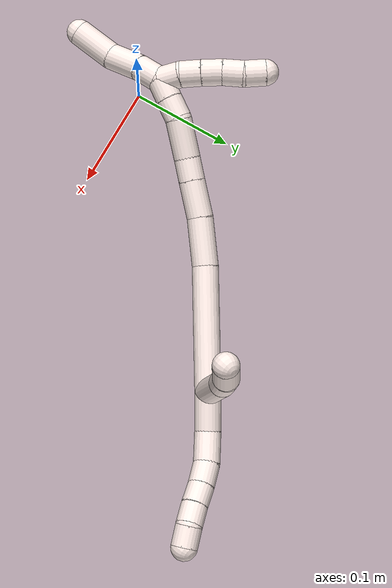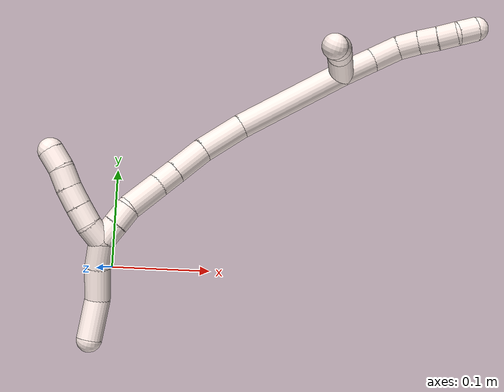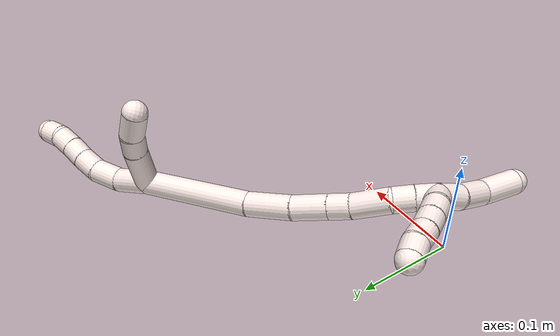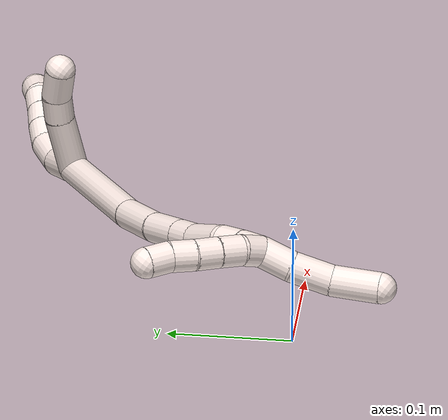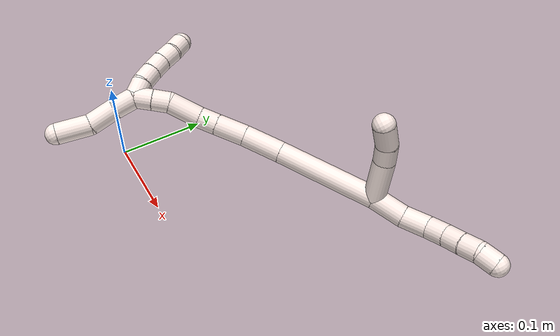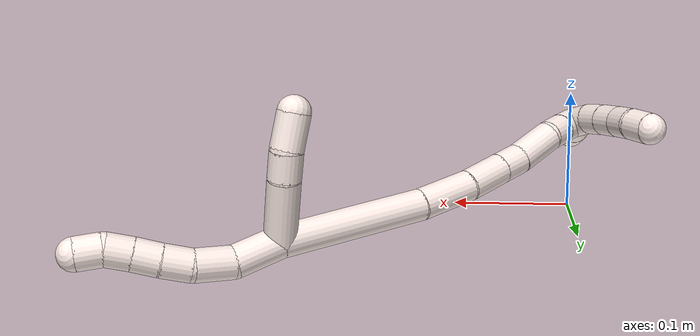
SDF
<sdf version="1.7">
 <world name="default">
  <model name="11">
   <static>0</static>
   <link name="11">
    <collision name="collision-cylinder-e_1_2_8">
     <pose>0.013127 0.009256 0.009405 -0.777404 0.782778 -0.334852</pose>
     <geometry><cylinder><radius>0.0125</radius><length>0.037226</length></cylinder></geometry>
     <surface>
      <friction><ode><mu>1.16</mu><mu2>1.16</mu2><slip1>0</slip1><slip2>0</slip2></ode></friction>
      <contact><ode><kp>1e+06</kp><kd>1</kd><max_vel>0</max_vel><min_depth>0.001</min_depth></ode></contact>
     </surface>
    </collision>
    <visual name="visual-cylinder-e_1_2_8">
     <pose>0.013127 0.009256 0.009405 -0.777404 0.782778 -0.334852</pose>
     <geometry><cylinder><radius>0.0125</radius><length>0.037226</length></cylinder></geometry>
     <material><ambient>1 0.933333 0.909804 1</ambient></material>
    </visual>
    <collision name="collision-cylinder-e_2_8_9">
     <pose>0.037195 0.021678 0.02876 -0.30807 0.808796 -0.132708</pose>
     <geometry><cylinder><radius>0.0125</radius><length>0.030249</length></cylinder></geometry>
     <surface>
      <friction><ode><mu>1.16</mu><mu2>1.16</mu2><slip1>0</slip1><slip2>0</slip2></ode></friction>
      <contact><ode><kp>1e+06</kp><kd>1</kd><max_vel>0</max_vel><min_depth>0.001</min_depth></ode></contact>
     </surface>
    </collision>
    <visual name="visual-cylinder-e_2_8_9">
     <pose>0.037195 0.021678 0.02876 -0.30807 0.808796 -0.132708</pose>
     <geometry><cylinder><radius>0.0125</radius><length>0.030249</length></cylinder></geometry>
     <material><ambient>1 0.933333 0.909804 1</ambient></material>
    </visual>
    <collision name="collision-cylinder-e_3_9_10">
     <pose>0.057064 0.024229 0.045367 0.092048 0.927982 0.046088</pose>
     <geometry><cylinder><radius>0.0125</radius><length>0.022306</length></cylinder></geometry>
     <surface>
      <friction><ode><mu>1.16</mu><mu2>1.16</mu2><slip1>0</slip1><slip2>0</slip2></ode></friction>
      <contact><ode><kp>1e+06</kp><kd>1</kd><max_vel>0</max_vel><min_depth>0.001</min_depth></ode></contact>
     </surface>
    </collision>
    <visual name="visual-cylinder-e_3_9_10">
     <pose>0.057064 0.024229 0.045367 0.092048 0.927982 0.046088</pose>
     <geometry><cylinder><radius>0.0125</radius><length>0.022306</length></cylinder></geometry>
     <material><ambient>1 0.933333 0.909804 1</ambient></material>
    </visual>
    <collision name="collision-cylinder-e_4_10_11">
     <pose>0.074271 0.022409 0.057577 0.213888 0.969392 0.112943</pose>
     <geometry><cylinder><radius>0.0125</radius><length>0.020084</length></cylinder></geometry>
     <surface>
      <friction><ode><mu>1.16</mu><mu2>1.16</mu2><slip1>0</slip1><slip2>0</slip2></ode></friction>
      <contact><ode><kp>1e+06</kp><kd>1</kd><max_vel>0</max_vel><min_depth>0.001</min_depth></ode></contact>
     </surface>
    </collision>
    <visual name="visual-cylinder-e_4_10_11">
     <pose>0.074271 0.022409 0.057577 0.213888 0.969392 0.112943</pose>
     <geometry><cylinder><radius>0.0125</radius><length>0.020084</length></cylinder></geometry>
     <material><ambient>1 0.933333 0.909804 1</ambient></material>
    </visual>
    <collision name="collision-cylinder-e_5_11_12">
     <pose>0.090648 0.02059 0.068984 0.104227 0.942147 0.05312</pose>
     <geometry><cylinder><radius>0.0125</radius><length>0.020021</length></cylinder></geometry>
     <surface>
      <friction><ode><mu>1.16</mu><mu2>1.16</mu2><slip1>0</slip1><slip2>0</slip2></ode></friction>
      <contact><ode><kp>1e+06</kp><kd>1</kd><max_vel>0</max_vel><min_depth>0.001</min_depth></ode></contact>
     </surface>
    </collision>
    <visual name="visual-cylinder-e_5_11_12">
     <pose>0.090648 0.02059 0.068984 0.104227 0.942147 0.05312</pose>
     <geometry><cylinder><radius>0.0125</radius><length>0.020021</length></cylinder></geometry>
     <material><ambient>1 0.933333 0.909804 1</ambient></material>
    </visual>
    <collision name="collision-cylinder-e_6_12_6">
     <pose>0.10725 0.022573 0.079537 -0.504638 1.00784 -0.282427</pose>
     <geometry><cylinder><radius>0.0125</radius><length>0.020114</length></cylinder></geometry>
     <surface>
      <friction><ode><mu>1.16</mu><mu2>1.16</mu2><slip1>0</slip1><slip2>0</slip2></ode></friction>
      <contact><ode><kp>1e+06</kp><kd>1</kd><max_vel>0</max_vel><min_depth>0.001</min_depth></ode></contact>
     </surface>
    </collision>
    <visual name="visual-cylinder-e_6_12_6">
     <pose>0.10725 0.022573 0.079537 -0.504638 1.00784 -0.282427</pose>
     <geometry><cylinder><radius>0.0125</radius><length>0.020114</length></cylinder></geometry>
     <material><ambient>1 0.933333 0.909804 1</ambient></material>
    </visual>
    <collision name="collision-cylinder-e_1_2_13">
     <pose>-0.006896 -0.019104 0.015215 0.898237 -0.275185 -0.133276</pose>
     <geometry><cylinder><radius>0.0125</radius><length>0.050754</length></cylinder></geometry>
     <surface>
      <friction><ode><mu>1.16</mu><mu2>1.16</mu2><slip1>0</slip1><slip2>0</slip2></ode></friction>
      <contact><ode><kp>1e+06</kp><kd>1</kd><max_vel>0</max_vel><min_depth>0.001</min_depth></ode></contact>
     </surface>
    </collision>
    <visual name="visual-cylinder-e_1_2_13">
     <pose>-0.006896 -0.019104 0.015215 0.898237 -0.275185 -0.133276</pose>
     <geometry><cylinder><radius>0.0125</radius><length>0.050754</length></cylinder></geometry>
     <material><ambient>1 0.933333 0.909804 1</ambient></material>
    </visual>
    <collision name="collision-cylinder-e_2_13_14">
     <pose>-0.016402 -0.047135 0.035901 1.02098 -0.244401 -0.137335</pose>
     <geometry><cylinder><radius>0.0125</radius><length>0.021583</length></cylinder></geometry>
     <surface>
      <friction><ode><mu>1.16</mu><mu2>1.16</mu2><slip1>0</slip1><slip2>0</slip2></ode></friction>
      <contact><ode><kp>1e+06</kp><kd>1</kd><max_vel>0</max_vel><min_depth>0.001</min_depth></ode></contact>
     </surface>
    </collision>
    <visual name="visual-cylinder-e_2_13_14">
     <pose>-0.016402 -0.047135 0.035901 1.02098 -0.244401 -0.137335</pose>
     <geometry><cylinder><radius>0.0125</radius><length>0.021583</length></cylinder></geometry>
     <material><ambient>1 0.933333 0.909804 1</ambient></material>
    </visual>
    <collision name="collision-cylinder-e_3_14_5">
     <pose>-0.022548 -0.068873 0.045209 1.27979 -0.258358 -0.192795</pose>
     <geometry><cylinder><radius>0.0125</radius><length>0.027663</length></cylinder></geometry>
     <surface>
      <friction><ode><mu>1.16</mu><mu2>1.16</mu2><slip1>0</slip1><slip2>0</slip2></ode></friction>
      <contact><ode><kp>1e+06</kp><kd>1</kd><max_vel>0</max_vel><min_depth>0.001</min_depth></ode></contact>
     </surface>
    </collision>
    <visual name="visual-cylinder-e_3_14_5">
     <pose>-0.022548 -0.068873 0.045209 1.27979 -0.258358 -0.192795</pose>
     <geometry><cylinder><radius>0.0125</radius><length>0.027663</length></cylinder></geometry>
     <material><ambient>1 0.933333 0.909804 1</ambient></material>
    </visual>
    <collision name="collision-cylinder-e_1_2_15">
     <pose>-0.040981 -0.021945 -0.036236 2.59707 -0.768816 -1.9334</pose>
     <geometry><cylinder><radius>0.0125</radius><length>0.117883</length></cylinder></geometry>
     <surface>
      <friction><ode><mu>1.16</mu><mu2>1.16</mu2><slip1>0</slip1><slip2>0</slip2></ode></friction>
      <contact><ode><kp>1e+06</kp><kd>1</kd><max_vel>0</max_vel><min_depth>0.001</min_depth></ode></contact>
     </surface>
    </collision>
    <visual name="visual-cylinder-e_1_2_15">
     <pose>-0.040981 -0.021945 -0.036236 2.59707 -0.768816 -1.9334</pose>
     <geometry><cylinder><radius>0.0125</radius><length>0.117883</length></cylinder></geometry>
     <material><ambient>1 0.933333 0.909804 1</ambient></material>
    </visual>
    <collision name="collision-cylinder-e_2_15_16">
     <pose>-0.096509 -0.054749 -0.086718 2.49025 -0.682074 -1.62048</pose>
     <geometry><cylinder><radius>0.0125</radius><length>0.046151</length></cylinder></geometry>
     <surface>
      <friction><ode><mu>1.16</mu><mu2>1.16</mu2><slip1>0</slip1><slip2>0</slip2></ode></friction>
      <contact><ode><kp>1e+06</kp><kd>1</kd><max_vel>0</max_vel><min_depth>0.001</min_depth></ode></contact>
     </surface>
    </collision>
    <visual name="visual-cylinder-e_2_15_16">
     <pose>-0.096509 -0.054749 -0.086718 2.49025 -0.682074 -1.62048</pose>
     <geometry><cylinder><radius>0.0125</radius><length>0.046151</length></cylinder></geometry>
     <material><ambient>1 0.933333 0.909804 1</ambient></material>
    </visual>
    <collision name="collision-cylinder-e_3_16_17">
     <pose>-0.120567 -0.075333 -0.112295 2.43235 -0.567169 -1.33365</pose>
     <geometry><cylinder><radius>0.0125</radius><length>0.035408</length></cylinder></geometry>
     <surface>
      <friction><ode><mu>1.16</mu><mu2>1.16</mu2><slip1>0</slip1><slip2>0</slip2></ode></friction>
      <contact><ode><kp>1e+06</kp><kd>1</kd><max_vel>0</max_vel><min_depth>0.001</min_depth></ode></contact>
     </surface>
    </collision>
    <visual name="visual-cylinder-e_3_16_17">
     <pose>-0.120567 -0.075333 -0.112295 2.43235 -0.567169 -1.33365</pose>
     <geometry><cylinder><radius>0.0125</radius><length>0.035408</length></cylinder></geometry>
     <material><ambient>1 0.933333 0.909804 1</ambient></material>
    </visual>
    <collision name="collision-cylinder-e_4_17_18">
     <pose>-0.136039 -0.091027 -0.130585 2.43261 -0.576452 -1.35073</pose>
     <geometry><cylinder><radius>0.0125</radius><length>0.02187</length></cylinder></geometry>
     <surface>
      <friction><ode><mu>1.16</mu><mu2>1.16</mu2><slip1>0</slip1><slip2>0</slip2></ode></friction>
      <contact><ode><kp>1e+06</kp><kd>1</kd><max_vel>0</max_vel><min_depth>0.001</min_depth></ode></contact>
     </surface>
    </collision>
    <visual name="visual-cylinder-e_4_17_18">
     <pose>-0.136039 -0.091027 -0.130585 2.43261 -0.576452 -1.35073</pose>
     <geometry><cylinder><radius>0.0125</radius><length>0.02187</length></cylinder></geometry>
     <material><ambient>1 0.933333 0.909804 1</ambient></material>
    </visual>
    <collision name="collision-cylinder-e_5_18_19">
     <pose>-0.151884 -0.109387 -0.147917 2.26779 -0.548959 -1.0852</pose>
     <geometry><cylinder><radius>0.0125</radius><length>0.037888</length></cylinder></geometry>
     <surface>
      <friction><ode><mu>1.16</mu><mu2>1.16</mu2><slip1>0</slip1><slip2>0</slip2></ode></friction>
      <contact><ode><kp>1e+06</kp><kd>1</kd><max_vel>0</max_vel><min_depth>0.001</min_depth></ode></contact>
     </surface>
    </collision>
    <visual name="visual-cylinder-e_5_18_19">
     <pose>-0.151884 -0.109387 -0.147917 2.26779 -0.548959 -1.0852</pose>
     <geometry><cylinder><radius>0.0125</radius><length>0.037888</length></cylinder></geometry>
     <material><ambient>1 0.933333 0.909804 1</ambient></material>
    </visual>
    <collision name="collision-cylinder-e_6_19_20">
     <pose>-0.16527 -0.127249 -0.166166 2.53444 -0.350097 -1.02792</pose>
     <geometry><cylinder><radius>0.0125</radius><length>0.020414</length></cylinder></geometry>
     <surface>
      <friction><ode><mu>1.16</mu><mu2>1.16</mu2><slip1>0</slip1><slip2>0</slip2></ode></friction>
      <contact><ode><kp>1e+06</kp><kd>1</kd><max_vel>0</max_vel><min_depth>0.001</min_depth></ode></contact>
     </surface>
    </collision>
    <visual name="visual-cylinder-e_6_19_20">
     <pose>-0.16527 -0.127249 -0.166166 2.53444 -0.350097 -1.02792</pose>
     <geometry><cylinder><radius>0.0125</radius><length>0.020414</length></cylinder></geometry>
     <material><ambient>1 0.933333 0.909804 1</ambient></material>
    </visual>
    <collision name="collision-cylinder-e_7_20_1">
     <pose>-0.172418 -0.137823 -0.182074 2.57566 -0.365872 -1.13331</pose>
     <geometry><cylinder><radius>0.0125</radius><length>0.020385</length></cylinder></geometry>
     <surface>
      <friction><ode><mu>1.16</mu><mu2>1.16</mu2><slip1>0</slip1><slip2>0</slip2></ode></friction>
      <contact><ode><kp>1e+06</kp><kd>1</kd><max_vel>0</max_vel><min_depth>0.001</min_depth></ode></contact>
     </surface>
    </collision>
    <visual name="visual-cylinder-e_7_20_1">
     <pose>-0.172418 -0.137823 -0.182074 2.57566 -0.365872 -1.13331</pose>
     <geometry><cylinder><radius>0.0125</radius><length>0.020385</length></cylinder></geometry>
     <material><ambient>1 0.933333 0.909804 1</ambient></material>
    </visual>
    <collision name="collision-cylinder-e_1_1_21">
     <pose>-0.184144 -0.142384 -0.184241 -0.09231 -0.940716 0.046957</pose>
     <geometry><cylinder><radius>0.0125</radius><length>0.02</length></cylinder></geometry>
     <surface>
      <friction><ode><mu>1.16</mu><mu2>1.16</mu2><slip1>0</slip1><slip2>0</slip2></ode></friction>
      <contact><ode><kp>1e+06</kp><kd>1</kd><max_vel>0</max_vel><min_depth>0.001</min_depth></ode></contact>
     </surface>
    </collision>
    <visual name="visual-cylinder-e_1_1_21">
     <pose>-0.184144 -0.142384 -0.184241 -0.09231 -0.940716 0.046957</pose>
     <geometry><cylinder><radius>0.0125</radius><length>0.02</length></cylinder></geometry>
     <material><ambient>1 0.933333 0.909804 1</ambient></material>
    </visual>
    <collision name="collision-cylinder-e_2_21_22">
     <pose>-0.199554 -0.138934 -0.172225 -0.441528 -0.822812 0.19521</pose>
     <geometry><cylinder><radius>0.0125</radius><length>0.02</length></cylinder></geometry>
     <surface>
      <friction><ode><mu>1.16</mu><mu2>1.16</mu2><slip1>0</slip1><slip2>0</slip2></ode></friction>
      <contact><ode><kp>1e+06</kp><kd>1</kd><max_vel>0</max_vel><min_depth>0.001</min_depth></ode></contact>
     </surface>
    </collision>
    <visual name="visual-cylinder-e_2_21_22">
     <pose>-0.199554 -0.138934 -0.172225 -0.441528 -0.822812 0.19521</pose>
     <geometry><cylinder><radius>0.0125</radius><length>0.02</length></cylinder></geometry>
     <material><ambient>1 0.933333 0.909804 1</ambient></material>
    </visual>
    <collision name="collision-cylinder-e_3_22_23">
     <pose>-0.213987 -0.132727 -0.159857 -0.48791 -0.789769 0.206742</pose>
     <geometry><cylinder><radius>0.0125</radius><length>0.02</length></cylinder></geometry>
     <surface>
      <friction><ode><mu>1.16</mu><mu2>1.16</mu2><slip1>0</slip1><slip2>0</slip2></ode></friction>
      <contact><ode><kp>1e+06</kp><kd>1</kd><max_vel>0</max_vel><min_depth>0.001</min_depth></ode></contact>
     </surface>
    </collision>
    <visual name="visual-cylinder-e_3_22_23">
     <pose>-0.213987 -0.132727 -0.159857 -0.48791 -0.789769 0.206742</pose>
     <geometry><cylinder><radius>0.0125</radius><length>0.02</length></cylinder></geometry>
     <material><ambient>1 0.933333 0.909804 1</ambient></material>
    </visual>
    <collision name="collision-cylinder-e_4_23_24">
     <pose>-0.227402 -0.12587 -0.146747 -0.476525 -0.683234 0.172285</pose>
     <geometry><cylinder><radius>0.0125</radius><length>0.02</length></cylinder></geometry>
     <surface>
      <friction><ode><mu>1.16</mu><mu2>1.16</mu2><slip1>0</slip1><slip2>0</slip2></ode></friction>
      <contact><ode><kp>1e+06</kp><kd>1</kd><max_vel>0</max_vel><min_depth>0.001</min_depth></ode></contact>
     </surface>
    </collision>
    <visual name="visual-cylinder-e_4_23_24">
     <pose>-0.227402 -0.12587 -0.146747 -0.476525 -0.683234 0.172285</pose>
     <geometry><cylinder><radius>0.0125</radius><length>0.02</length></cylinder></geometry>
     <material><ambient>1 0.933333 0.909804 1</ambient></material>
    </visual>
    <collision name="collision-cylinder-e_5_24_4">
     <pose>-0.241216 -0.118254 -0.134634 -0.660713 -0.848262 0.307245</pose>
     <geometry><cylinder><radius>0.0125</radius><length>0.02</length></cylinder></geometry>
     <surface>
      <friction><ode><mu>1.16</mu><mu2>1.16</mu2><slip1>0</slip1><slip2>0</slip2></ode></friction>
      <contact><ode><kp>1e+06</kp><kd>1</kd><max_vel>0</max_vel><min_depth>0.001</min_depth></ode></contact>
     </surface>
    </collision>
    <visual name="visual-cylinder-e_5_24_4">
     <pose>-0.241216 -0.118254 -0.134634 -0.660713 -0.848262 0.307245</pose>
     <geometry><cylinder><radius>0.0125</radius><length>0.02</length></cylinder></geometry>
     <material><ambient>1 0.933333 0.909804 1</ambient></material>
    </visual>
    <collision name="collision-cylinder-e_1_1_25">
     <pose>-0.17427 -0.144734 -0.203362 3.00605 0.133357 1.55449</pose>
     <geometry><cylinder><radius>0.0125</radius><length>0.026993</length></cylinder></geometry>
     <surface>
      <friction><ode><mu>1.16</mu><mu2>1.16</mu2><slip1>0</slip1><slip2>0</slip2></ode></friction>
      <contact><ode><kp>1e+06</kp><kd>1</kd><max_vel>0</max_vel><min_depth>0.001</min_depth></ode></contact>
     </surface>
    </collision>
    <visual name="visual-cylinder-e_1_1_25">
     <pose>-0.17427 -0.144734 -0.203362 3.00605 0.133357 1.55449</pose>
     <geometry><cylinder><radius>0.0125</radius><length>0.026993</length></cylinder></geometry>
     <material><ambient>1 0.933333 0.909804 1</ambient></material>
    </visual>
    <collision name="collision-cylinder-e_2_25_26">
     <pose>-0.167674 -0.149703 -0.232251 2.94211 0.292356 1.94762</pose>
     <geometry><cylinder><radius>0.0125</radius><length>0.033315</length></cylinder></geometry>
     <surface>
      <friction><ode><mu>1.16</mu><mu2>1.16</mu2><slip1>0</slip1><slip2>0</slip2></ode></friction>
      <contact><ode><kp>1e+06</kp><kd>1</kd><max_vel>0</max_vel><min_depth>0.001</min_depth></ode></contact>
     </surface>
    </collision>
    <visual name="visual-cylinder-e_2_25_26">
     <pose>-0.167674 -0.149703 -0.232251 2.94211 0.292356 1.94762</pose>
     <geometry><cylinder><radius>0.0125</radius><length>0.033315</length></cylinder></geometry>
     <material><ambient>1 0.933333 0.909804 1</ambient></material>
    </visual>
    <collision name="collision-cylinder-e_3_26_3">
     <pose>-0.160617 -0.162124 -0.265292 2.65268 0.113964 0.449636</pose>
     <geometry><cylinder><radius>0.0125</radius><length>0.039692</length></cylinder></geometry>
     <surface>
      <friction><ode><mu>1.16</mu><mu2>1.16</mu2><slip1>0</slip1><slip2>0</slip2></ode></friction>
      <contact><ode><kp>1e+06</kp><kd>1</kd><max_vel>0</max_vel><min_depth>0.001</min_depth></ode></contact>
     </surface>
    </collision>
    <visual name="visual-cylinder-e_3_26_3">
     <pose>-0.160617 -0.162124 -0.265292 2.65268 0.113964 0.449636</pose>
     <geometry><cylinder><radius>0.0125</radius><length>0.039692</length></cylinder></geometry>
     <material><ambient>1 0.933333 0.909804 1</ambient></material>
    </visual>
    <collision name="collision-sphere-3">
     <pose>-0.15836 -0.171384 -0.282699 0 -0 0</pose>
     <geometry><sphere><radius>0.0125</radius></sphere></geometry>
     <surface>
      <friction><ode><mu>1.16</mu><mu2>1.16</mu2><slip1>0</slip1><slip2>0</slip2></ode></friction>
      <contact><ode><kp>1e+06</kp><kd>1</kd><max_vel>0</max_vel><min_depth>0.001</min_depth></ode></contact>
     </surface>
    </collision>
    <visual name="visual-sphere-3">
     <pose>-0.15836 -0.171384 -0.282699 0 -0 0</pose>
     <geometry><sphere><radius>0.0125</radius></sphere></geometry>
     <material><ambient>1 0.933333 0.909804 1</ambient></material>
    </visual>
    <collision name="collision-sphere-26">
     <pose>-0.162873 -0.152864 -0.247885 0 -0 0</pose>
     <geometry><sphere><radius>0.0125</radius></sphere></geometry>
     <surface>
      <friction><ode><mu>1.16</mu><mu2>1.16</mu2><slip1>0</slip1><slip2>0</slip2></ode></friction>
      <contact><ode><kp>1e+06</kp><kd>1</kd><max_vel>0</max_vel><min_depth>0.001</min_depth></ode></contact>
     </surface>
    </collision>
    <visual name="visual-sphere-26">
     <pose>-0.162873 -0.152864 -0.247885 0 -0 0</pose>
     <geometry><sphere><radius>0.0125</radius></sphere></geometry>
     <material><ambient>1 0.933333 0.909804 1</ambient></material>
    </visual>
    <collision name="collision-sphere-25">
     <pose>-0.172475 -0.146542 -0.216616 0 -0 0</pose>
     <geometry><sphere><radius>0.0125</radius></sphere></geometry>
     <surface>
      <friction><ode><mu>1.16</mu><mu2>1.16</mu2><slip1>0</slip1><slip2>0</slip2></ode></friction>
      <contact><ode><kp>1e+06</kp><kd>1</kd><max_vel>0</max_vel><min_depth>0.001</min_depth></ode></contact>
     </surface>
    </collision>
    <visual name="visual-sphere-25">
     <pose>-0.172475 -0.146542 -0.216616 0 -0 0</pose>
     <geometry><sphere><radius>0.0125</radius></sphere></geometry>
     <material><ambient>1 0.933333 0.909804 1</ambient></material>
    </visual>
    <collision name="collision-sphere-4">
     <pose>-0.248718 -0.114196 -0.129413 0 -0 0</pose>
     <geometry><sphere><radius>0.0125</radius></sphere></geometry>
     <surface>
      <friction><ode><mu>1.16</mu><mu2>1.16</mu2><slip1>0</slip1><slip2>0</slip2></ode></friction>
      <contact><ode><kp>1e+06</kp><kd>1</kd><max_vel>0</max_vel><min_depth>0.001</min_depth></ode></contact>
     </surface>
    </collision>
    <visual name="visual-sphere-4">
     <pose>-0.248718 -0.114196 -0.129413 0 -0 0</pose>
     <geometry><sphere><radius>0.0125</radius></sphere></geometry>
     <material><ambient>1 0.933333 0.909804 1</ambient></material>
    </visual>
    <collision name="collision-sphere-24">
     <pose>-0.233715 -0.122312 -0.139856 0 -0 0</pose>
     <geometry><sphere><radius>0.0125</radius></sphere></geometry>
     <surface>
      <friction><ode><mu>1.16</mu><mu2>1.16</mu2><slip1>0</slip1><slip2>0</slip2></ode></friction>
      <contact><ode><kp>1e+06</kp><kd>1</kd><max_vel>0</max_vel><min_depth>0.001</min_depth></ode></contact>
     </surface>
    </collision>
    <visual name="visual-sphere-24">
     <pose>-0.233715 -0.122312 -0.139856 0 -0 0</pose>
     <geometry><sphere><radius>0.0125</radius></sphere></geometry>
     <material><ambient>1 0.933333 0.909804 1</ambient></material>
    </visual>
    <collision name="collision-sphere-23">
     <pose>-0.221089 -0.129427 -0.153638 0 -0 0</pose>
     <geometry><sphere><radius>0.0125</radius></sphere></geometry>
     <surface>
      <friction><ode><mu>1.16</mu><mu2>1.16</mu2><slip1>0</slip1><slip2>0</slip2></ode></friction>
      <contact><ode><kp>1e+06</kp><kd>1</kd><max_vel>0</max_vel><min_depth>0.001</min_depth></ode></contact>
     </surface>
    </collision>
    <visual name="visual-sphere-23">
     <pose>-0.221089 -0.129427 -0.153638 0 -0 0</pose>
     <geometry><sphere><radius>0.0125</radius></sphere></geometry>
     <material><ambient>1 0.933333 0.909804 1</ambient></material>
    </visual>
    <collision name="collision-sphere-22">
     <pose>-0.206885 -0.136027 -0.166075 0 -0 0</pose>
     <geometry><sphere><radius>0.0125</radius></sphere></geometry>
     <surface>
      <friction><ode><mu>1.16</mu><mu2>1.16</mu2><slip1>0</slip1><slip2>0</slip2></ode></friction>
      <contact><ode><kp>1e+06</kp><kd>1</kd><max_vel>0</max_vel><min_depth>0.001</min_depth></ode></contact>
     </surface>
    </collision>
    <visual name="visual-sphere-22">
     <pose>-0.206885 -0.136027 -0.166075 0 -0 0</pose>
     <geometry><sphere><radius>0.0125</radius></sphere></geometry>
     <material><ambient>1 0.933333 0.909804 1</ambient></material>
    </visual>
    <collision name="collision-sphere-21">
     <pose>-0.192224 -0.14184 -0.178374 0 -0 0</pose>
     <geometry><sphere><radius>0.0125</radius></sphere></geometry>
     <surface>
      <friction><ode><mu>1.16</mu><mu2>1.16</mu2><slip1>0</slip1><slip2>0</slip2></ode></friction>
      <contact><ode><kp>1e+06</kp><kd>1</kd><max_vel>0</max_vel><min_depth>0.001</min_depth></ode></contact>
     </surface>
    </collision>
    <visual name="visual-sphere-21">
     <pose>-0.192224 -0.14184 -0.178374 0 -0 0</pose>
     <geometry><sphere><radius>0.0125</radius></sphere></geometry>
     <material><ambient>1 0.933333 0.909804 1</ambient></material>
    </visual>
    <collision name="collision-sphere-1">
     <pose>-0.176064 -0.142927 -0.190108 0 -0 0</pose>
     <geometry><sphere><radius>0.0125</radius></sphere></geometry>
     <surface>
      <friction><ode><mu>1.16</mu><mu2>1.16</mu2><slip1>0</slip1><slip2>0</slip2></ode></friction>
      <contact><ode><kp>1e+06</kp><kd>1</kd><max_vel>0</max_vel><min_depth>0.001</min_depth></ode></contact>
     </surface>
    </collision>
    <visual name="visual-sphere-1">
     <pose>-0.176064 -0.142927 -0.190108 0 -0 0</pose>
     <geometry><sphere><radius>0.0125</radius></sphere></geometry>
     <material><ambient>1 0.933333 0.909804 1</ambient></material>
    </visual>
    <collision name="collision-sphere-12">
     <pose>0.098745 0.019978 0.074839 0 -0 0</pose>
     <geometry><sphere><radius>0.0125</radius></sphere></geometry>
     <surface>
      <friction><ode><mu>1.16</mu><mu2>1.16</mu2><slip1>0</slip1><slip2>0</slip2></ode></friction>
      <contact><ode><kp>1e+06</kp><kd>1</kd><max_vel>0</max_vel><min_depth>0.001</min_depth></ode></contact>
     </surface>
    </collision>
    <visual name="visual-sphere-12">
     <pose>0.098745 0.019978 0.074839 0 -0 0</pose>
     <geometry><sphere><radius>0.0125</radius></sphere></geometry>
     <material><ambient>1 0.933333 0.909804 1</ambient></material>
    </visual>
    <collision name="collision-sphere-11">
     <pose>0.082552 0.021203 0.06313 0 -0 0</pose>
     <geometry><sphere><radius>0.0125</radius></sphere></geometry>
     <surface>
      <friction><ode><mu>1.16</mu><mu2>1.16</mu2><slip1>0</slip1><slip2>0</slip2></ode></friction>
      <contact><ode><kp>1e+06</kp><kd>1</kd><max_vel>0</max_vel><min_depth>0.001</min_depth></ode></contact>
     </surface>
    </collision>
    <visual name="visual-sphere-11">
     <pose>0.082552 0.021203 0.06313 0 -0 0</pose>
     <geometry><sphere><radius>0.0125</radius></sphere></geometry>
     <material><ambient>1 0.933333 0.909804 1</ambient></material>
    </visual>
    <collision name="collision-sphere-10">
     <pose>0.065991 0.023615 0.052025 0 -0 0</pose>
     <geometry><sphere><radius>0.0125</radius></sphere></geometry>
     <surface>
      <friction><ode><mu>1.16</mu><mu2>1.16</mu2><slip1>0</slip1><slip2>0</slip2></ode></friction>
      <contact><ode><kp>1e+06</kp><kd>1</kd><max_vel>0</max_vel><min_depth>0.001</min_depth></ode></contact>
     </surface>
    </collision>
    <visual name="visual-sphere-10">
     <pose>0.065991 0.023615 0.052025 0 -0 0</pose>
     <geometry><sphere><radius>0.0125</radius></sphere></geometry>
     <material><ambient>1 0.933333 0.909804 1</ambient></material>
    </visual>
    <collision name="collision-sphere-9">
     <pose>0.048137 0.024844 0.03871 0 -0 0</pose>
     <geometry><sphere><radius>0.0125</radius></sphere></geometry>
     <surface>
      <friction><ode><mu>1.16</mu><mu2>1.16</mu2><slip1>0</slip1><slip2>0</slip2></ode></friction>
      <contact><ode><kp>1e+06</kp><kd>1</kd><max_vel>0</max_vel><min_depth>0.001</min_depth></ode></contact>
     </surface>
    </collision>
    <visual name="visual-sphere-9">
     <pose>0.048137 0.024844 0.03871 0 -0 0</pose>
     <geometry><sphere><radius>0.0125</radius></sphere></geometry>
     <material><ambient>1 0.933333 0.909804 1</ambient></material>
    </visual>
    <collision name="collision-sphere-2">
     <geometry><sphere><radius>0.0125</radius></sphere></geometry>
     <surface>
      <friction><ode><mu>1.16</mu><mu2>1.16</mu2><slip1>0</slip1><slip2>0</slip2></ode></friction>
      <contact><ode><kp>1e+06</kp><kd>1</kd><max_vel>0</max_vel><min_depth>0.001</min_depth></ode></contact>
     </surface>
    </collision>
    <visual name="visual-sphere-2">
     <geometry><sphere><radius>0.0125</radius></sphere></geometry>
     <material><ambient>1 0.933333 0.909804 1</ambient></material>
    </visual>
    <collision name="collision-sphere-19">
     <pose>-0.161769 -0.121779 -0.158291 0 -0 0</pose>
     <geometry><sphere><radius>0.0125</radius></sphere></geometry>
     <surface>
      <friction><ode><mu>1.16</mu><mu2>1.16</mu2><slip1>0</slip1><slip2>0</slip2></ode></friction>
      <contact><ode><kp>1e+06</kp><kd>1</kd><max_vel>0</max_vel><min_depth>0.001</min_depth></ode></contact>
     </surface>
    </collision>
    <visual name="visual-sphere-19">
     <pose>-0.161769 -0.121779 -0.158291 0 -0 0</pose>
     <geometry><sphere><radius>0.0125</radius></sphere></geometry>
     <material><ambient>1 0.933333 0.909804 1</ambient></material>
    </visual>
    <collision name="collision-sphere-8">
     <pose>0.026253 0.018512 0.01881 0 -0 0</pose>
     <geometry><sphere><radius>0.0125</radius></sphere></geometry>
     <surface>
      <friction><ode><mu>1.16</mu><mu2>1.16</mu2><slip1>0</slip1><slip2>0</slip2></ode></friction>
      <contact><ode><kp>1e+06</kp><kd>1</kd><max_vel>0</max_vel><min_depth>0.001</min_depth></ode></contact>
     </surface>
    </collision>
    <visual name="visual-sphere-8">
     <pose>0.026253 0.018512 0.01881 0 -0 0</pose>
     <geometry><sphere><radius>0.0125</radius></sphere></geometry>
     <material><ambient>1 0.933333 0.909804 1</ambient></material>
    </visual>
    <collision name="collision-sphere-6">
     <pose>0.115755 0.025168 0.084236 0 -0 0</pose>
     <geometry><sphere><radius>0.0125</radius></sphere></geometry>
     <surface>
      <friction><ode><mu>1.16</mu><mu2>1.16</mu2><slip1>0</slip1><slip2>0</slip2></ode></friction>
      <contact><ode><kp>1e+06</kp><kd>1</kd><max_vel>0</max_vel><min_depth>0.001</min_depth></ode></contact>
     </surface>
    </collision>
    <visual name="visual-sphere-6">
     <pose>0.115755 0.025168 0.084236 0 -0 0</pose>
     <geometry><sphere><radius>0.0125</radius></sphere></geometry>
     <material><ambient>1 0.933333 0.909804 1</ambient></material>
    </visual>
    <collision name="collision-sphere-13">
     <pose>-0.013791 -0.038208 0.03043 0 -0 0</pose>
     <geometry><sphere><radius>0.0125</radius></sphere></geometry>
     <surface>
      <friction><ode><mu>1.16</mu><mu2>1.16</mu2><slip1>0</slip1><slip2>0</slip2></ode></friction>
      <contact><ode><kp>1e+06</kp><kd>1</kd><max_vel>0</max_vel><min_depth>0.001</min_depth></ode></contact>
     </surface>
    </collision>
    <visual name="visual-sphere-13">
     <pose>-0.013791 -0.038208 0.03043 0 -0 0</pose>
     <geometry><sphere><radius>0.0125</radius></sphere></geometry>
     <material><ambient>1 0.933333 0.909804 1</ambient></material>
    </visual>
    <collision name="collision-sphere-14">
     <pose>-0.019014 -0.056063 0.041372 0 -0 0</pose>
     <geometry><sphere><radius>0.0125</radius></sphere></geometry>
     <surface>
      <friction><ode><mu>1.16</mu><mu2>1.16</mu2><slip1>0</slip1><slip2>0</slip2></ode></friction>
      <contact><ode><kp>1e+06</kp><kd>1</kd><max_vel>0</max_vel><min_depth>0.001</min_depth></ode></contact>
     </surface>
    </collision>
    <visual name="visual-sphere-14">
     <pose>-0.019014 -0.056063 0.041372 0 -0 0</pose>
     <geometry><sphere><radius>0.0125</radius></sphere></geometry>
     <material><ambient>1 0.933333 0.909804 1</ambient></material>
    </visual>
    <collision name="collision-sphere-5">
     <pose>-0.026081 -0.081683 0.049046 0 -0 0</pose>
     <geometry><sphere><radius>0.0125</radius></sphere></geometry>
     <surface>
      <friction><ode><mu>1.16</mu><mu2>1.16</mu2><slip1>0</slip1><slip2>0</slip2></ode></friction>
      <contact><ode><kp>1e+06</kp><kd>1</kd><max_vel>0</max_vel><min_depth>0.001</min_depth></ode></contact>
     </surface>
    </collision>
    <visual name="visual-sphere-5">
     <pose>-0.026081 -0.081683 0.049046 0 -0 0</pose>
     <geometry><sphere><radius>0.0125</radius></sphere></geometry>
     <material><ambient>1 0.933333 0.909804 1</ambient></material>
    </visual>
    <collision name="collision-sphere-15">
     <pose>-0.081962 -0.043889 -0.072473 0 -0 0</pose>
     <geometry><sphere><radius>0.0125</radius></sphere></geometry>
     <surface>
      <friction><ode><mu>1.16</mu><mu2>1.16</mu2><slip1>0</slip1><slip2>0</slip2></ode></friction>
      <contact><ode><kp>1e+06</kp><kd>1</kd><max_vel>0</max_vel><min_depth>0.001</min_depth></ode></contact>
     </surface>
    </collision>
    <visual name="visual-sphere-15">
     <pose>-0.081962 -0.043889 -0.072473 0 -0 0</pose>
     <geometry><sphere><radius>0.0125</radius></sphere></geometry>
     <material><ambient>1 0.933333 0.909804 1</ambient></material>
    </visual>
    <collision name="collision-sphere-16">
     <pose>-0.111056 -0.065609 -0.100964 0 -0 0</pose>
     <geometry><sphere><radius>0.0125</radius></sphere></geometry>
     <surface>
      <friction><ode><mu>1.16</mu><mu2>1.16</mu2><slip1>0</slip1><slip2>0</slip2></ode></friction>
      <contact><ode><kp>1e+06</kp><kd>1</kd><max_vel>0</max_vel><min_depth>0.001</min_depth></ode></contact>
     </surface>
    </collision>
    <visual name="visual-sphere-16">
     <pose>-0.111056 -0.065609 -0.100964 0 -0 0</pose>
     <geometry><sphere><radius>0.0125</radius></sphere></geometry>
     <material><ambient>1 0.933333 0.909804 1</ambient></material>
    </visual>
    <collision name="collision-sphere-17">
     <pose>-0.130079 -0.085058 -0.123626 0 -0 0</pose>
     <geometry><sphere><radius>0.0125</radius></sphere></geometry>
     <surface>
      <friction><ode><mu>1.16</mu><mu2>1.16</mu2><slip1>0</slip1><slip2>0</slip2></ode></friction>
      <contact><ode><kp>1e+06</kp><kd>1</kd><max_vel>0</max_vel><min_depth>0.001</min_depth></ode></contact>
     </surface>
    </collision>
    <visual name="visual-sphere-17">
     <pose>-0.130079 -0.085058 -0.123626 0 -0 0</pose>
     <geometry><sphere><radius>0.0125</radius></sphere></geometry>
     <material><ambient>1 0.933333 0.909804 1</ambient></material>
    </visual>
    <collision name="collision-sphere-18">
     <pose>-0.141999 -0.096996 -0.137544 0 -0 0</pose>
     <geometry><sphere><radius>0.0125</radius></sphere></geometry>
     <surface>
      <friction><ode><mu>1.16</mu><mu2>1.16</mu2><slip1>0</slip1><slip2>0</slip2></ode></friction>
      <contact><ode><kp>1e+06</kp><kd>1</kd><max_vel>0</max_vel><min_depth>0.001</min_depth></ode></contact>
     </surface>
    </collision>
    <visual name="visual-sphere-18">
     <pose>-0.141999 -0.096996 -0.137544 0 -0 0</pose>
     <geometry><sphere><radius>0.0125</radius></sphere></geometry>
     <material><ambient>1 0.933333 0.909804 1</ambient></material>
    </visual>
    <collision name="collision-sphere-20">
     <pose>-0.168771 -0.13272 -0.17404 0 -0 0</pose>
     <geometry><sphere><radius>0.0125</radius></sphere></geometry>
     <surface>
      <friction><ode><mu>1.16</mu><mu2>1.16</mu2><slip1>0</slip1><slip2>0</slip2></ode></friction>
      <contact><ode><kp>1e+06</kp><kd>1</kd><max_vel>0</max_vel><min_depth>0.001</min_depth></ode></contact>
     </surface>
    </collision>
    <visual name="visual-sphere-20">
     <pose>-0.168771 -0.13272 -0.17404 0 -0 0</pose>
     <geometry><sphere><radius>0.0125</radius></sphere></geometry>
     <material><ambient>1 0.933333 0.909804 1</ambient></material>
    </visual>
    <inertial>
     <pose>-0.080188 -0.065135 -0.07781 0 -0 0</pose>
     <mass>0.75</mass>
     <inertia><ixx>-0.000115</ixx><ixy>0</ixy><ixz>0</ixz><iyy>-1e-06</iyy><iyz>0</iyz><izz>0.00018</izz></inertia>
    </inertial>
   </link>
   <pose>0.226499 0.207799 0.023606 -1.0752 0.117431 -0.264826</pose>
  </model>
 </world>
</sdf>
